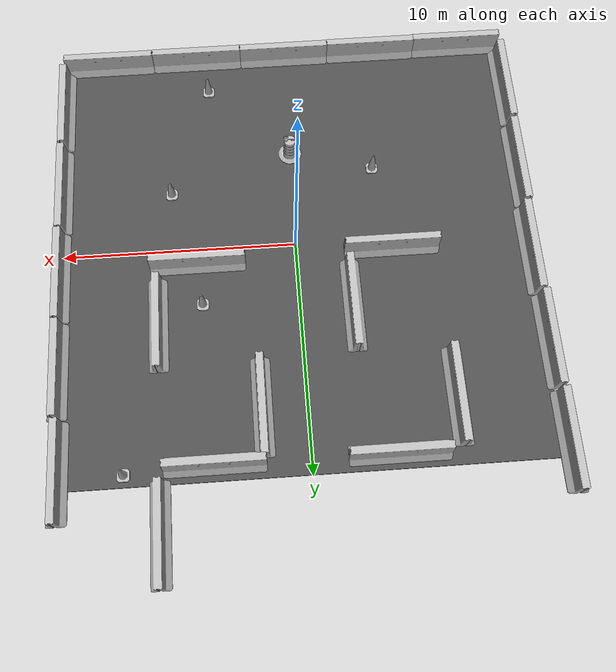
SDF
<sdf version="1.6">
 <world name="default">
  <model name="ground_plane">
   <static>1</static>
   <link name="link">
    <collision name="collision">
     <geometry><plane><normal>0 0 1</normal><size>100 100</size></plane></geometry>
     <surface><friction><ode><mu>100</mu><mu2>50</mu2></ode></friction></surface>
    </collision>
    <visual name="visual">
     <cast_shadows>0</cast_shadows>
     <geometry><plane><normal>0 0 1</normal><size>100 100</size></plane></geometry>
     <material>
      <script><uri>file://media/materials/scripts/gazebo.material</uri><name>Gazebo/Grey</name></script>
     </material>
    </visual>
   </link>
  </model>
  <model name="asphalt_plane">
   <static>1</static>
   <link name="link">
    <collision name="collision"><geometry><box><size>20 20 0.1</size></box></geometry></collision>
    <visual name="visual">
     <cast_shadows>0</cast_shadows>
     <geometry><box><size>20 20 0.1</size></box></geometry>
     <material>
      <script>
       <uri>model://asphalt_plane/materials/scripts</uri>
       <uri>model://asphalt_plane/materials/textures</uri>
       <name>vrc/asphalt</name>
      </script>
     </material>
    </visual>
   </link>
   <pose>0.010541 -0.044599 0 0 -0 0</pose>
  </model>
  <model name="jersey_barrier">
   <static>1</static>
   <link name="link">
    <visual name="visual">
     <geometry><mesh><uri>model://jersey_barrier/meshes/jersey_barrier.dae</uri></mesh></geometry>
    </visual>
    <collision name="upright">
     <pose>0 0 0.5715 0 -0 0</pose>
     <geometry><box><size>4.06542 0.3063 1.143</size></box></geometry>
    </collision>
    <collision name="base">
     <pose>0 0 0.032258 0 -0 0</pose>
     <geometry><box><size>4.06542 0.8107 0.064516</size></box></geometry>
    </collision>
    <collision name="base2">
     <pose>0 0 0.1 0 -0 0</pose>
     <geometry><box><size>4.06542 0.65 0.1</size></box></geometry>
    </collision>
    <collision name="base3">
     <pose>0 0 0.2 0 -0 0</pose>
     <geometry><box><size>4.06542 0.5 0.1</size></box></geometry>
    </collision>
    <collision name="left-angle">
     <pose>0 -0.224 0.2401 0.9 -0 0</pose>
     <geometry><box><size>4.06542 0.5 0.064516</size></box></geometry>
    </collision>
    <collision name="right-angle">
     <pose>0 0.224 0.2401 -0.9 0 0</pose>
     <geometry><box><size>4.06542 0.5 0.064516</size></box></geometry>
    </collision>
   </link>
   <pose>7.99065 -9.61442 0 0 -0 0</pose>
  </model>
  <model name="jersey_barrier_clone">
   <static>1</static>
   <link name="link">
    <visual name="visual">
     <geometry><mesh><uri>model://jersey_barrier/meshes/jersey_barrier.dae</uri></mesh></geometry>
    </visual>
    <collision name="upright">
     <pose>0 0 0.5715 0 -0 0</pose>
     <geometry><box><size>4.06542 0.3063 1.143</size></box></geometry>
    </collision>
    <collision name="base">
     <pose>0 0 0.032258 0 -0 0</pose>
     <geometry><box><size>4.06542 0.8107 0.064516</size></box></geometry>
    </collision>
    <collision name="base2">
     <pose>0 0 0.1 0 -0 0</pose>
     <geometry><box><size>4.06542 0.65 0.1</size></box></geometry>
    </collision>
    <collision name="base3">
     <pose>0 0 0.2 0 -0 0</pose>
     <geometry><box><size>4.06542 0.5 0.1</size></box></geometry>
    </collision>
    <collision name="left-angle">
     <pose>0 -0.224 0.2401 0.9 -0 0</pose>
     <geometry><box><size>4.06542 0.5 0.064516</size></box></geometry>
    </collision>
    <collision name="right-angle">
     <pose>0 0.224 0.2401 -0.9 0 0</pose>
     <geometry><box><size>4.06542 0.5 0.064516</size></box></geometry>
    </collision>
   </link>
   <pose>3.92686 -9.63135 0 0 -0 0</pose>
  </model>
  <model name="jersey_barrier_clone_0">
   <static>1</static>
   <link name="link">
    <visual name="visual">
     <geometry><mesh><uri>model://jersey_barrier/meshes/jersey_barrier.dae</uri></mesh></geometry>
    </visual>
    <collision name="upright">
     <pose>0 0 0.5715 0 -0 0</pose>
     <geometry><box><size>4.06542 0.3063 1.143</size></box></geometry>
    </collision>
    <collision name="base">
     <pose>0 0 0.032258 0 -0 0</pose>
     <geometry><box><size>4.06542 0.8107 0.064516</size></box></geometry>
    </collision>
    <collision name="base2">
     <pose>0 0 0.1 0 -0 0</pose>
     <geometry><box><size>4.06542 0.65 0.1</size></box></geometry>
    </collision>
    <collision name="base3">
     <pose>0 0 0.2 0 -0 0</pose>
     <geometry><box><size>4.06542 0.5 0.1</size></box></geometry>
    </collision>
    <collision name="left-angle">
     <pose>0 -0.224 0.2401 0.9 -0 0</pose>
     <geometry><box><size>4.06542 0.5 0.064516</size></box></geometry>
    </collision>
    <collision name="right-angle">
     <pose>0 0.224 0.2401 -0.9 0 0</pose>
     <geometry><box><size>4.06542 0.5 0.064516</size></box></geometry>
    </collision>
   </link>
   <pose>-0.107331 -9.63265 0 0 -0 0</pose>
  </model>
  <model name="jersey_barrier_clone_1">
   <static>1</static>
   <link name="link">
    <visual name="visual">
     <geometry><mesh><uri>model://jersey_barrier/meshes/jersey_barrier.dae</uri></mesh></geometry>
    </visual>
    <collision name="upright">
     <pose>0 0 0.5715 0 -0 0</pose>
     <geometry><box><size>4.06542 0.3063 1.143</size></box></geometry>
    </collision>
    <collision name="base">
     <pose>0 0 0.032258 0 -0 0</pose>
     <geometry><box><size>4.06542 0.8107 0.064516</size></box></geometry>
    </collision>
    <collision name="base2">
     <pose>0 0 0.1 0 -0 0</pose>
     <geometry><box><size>4.06542 0.65 0.1</size></box></geometry>
    </collision>
    <collision name="base3">
     <pose>0 0 0.2 0 -0 0</pose>
     <geometry><box><size>4.06542 0.5 0.1</size></box></geometry>
    </collision>
    <collision name="left-angle">
     <pose>0 -0.224 0.2401 0.9 -0 0</pose>
     <geometry><box><size>4.06542 0.5 0.064516</size></box></geometry>
    </collision>
    <collision name="right-angle">
     <pose>0 0.224 0.2401 -0.9 0 0</pose>
     <geometry><box><size>4.06542 0.5 0.064516</size></box></geometry>
    </collision>
   </link>
   <pose>-4.16052 -9.65157 0 0 -0 0</pose>
  </model>
  <model name="jersey_barrier_clone_2">
   <static>1</static>
   <link name="link">
    <visual name="visual">
     <geometry><mesh><uri>model://jersey_barrier/meshes/jersey_barrier.dae</uri></mesh></geometry>
    </visual>
    <collision name="upright">
     <pose>0 0 0.5715 0 -0 0</pose>
     <geometry><box><size>4.06542 0.3063 1.143</size></box></geometry>
    </collision>
    <collision name="base">
     <pose>0 0 0.032258 0 -0 0</pose>
     <geometry><box><size>4.06542 0.8107 0.064516</size></box></geometry>
    </collision>
    <collision name="base2">
     <pose>0 0 0.1 0 -0 0</pose>
     <geometry><box><size>4.06542 0.65 0.1</size></box></geometry>
    </collision>
    <collision name="base3">
     <pose>0 0 0.2 0 -0 0</pose>
     <geometry><box><size>4.06542 0.5 0.1</size></box></geometry>
    </collision>
    <collision name="left-angle">
     <pose>0 -0.224 0.2401 0.9 -0 0</pose>
     <geometry><box><size>4.06542 0.5 0.064516</size></box></geometry>
    </collision>
    <collision name="right-angle">
     <pose>0 0.224 0.2401 -0.9 0 0</pose>
     <geometry><box><size>4.06542 0.5 0.064516</size></box></geometry>
    </collision>
   </link>
   <pose>-8.15582 -9.68062 0 0 -0 0</pose>
  </model>
  <model name="jersey_barrier_0">
   <static>1</static>
   <link name="link">
    <visual name="visual">
     <geometry><mesh><uri>model://jersey_barrier/meshes/jersey_barrier.dae</uri></mesh></geometry>
    </visual>
    <collision name="upright">
     <pose>0 0 0.5715 0 -0 0</pose>
     <geometry><box><size>4.06542 0.3063 1.143</size></box></geometry>
    </collision>
    <collision name="base">
     <pose>0 0 0.032258 0 -0 0</pose>
     <geometry><box><size>4.06542 0.8107 0.064516</size></box></geometry>
    </collision>
    <collision name="base2">
     <pose>0 0 0.1 0 -0 0</pose>
     <geometry><box><size>4.06542 0.65 0.1</size></box></geometry>
    </collision>
    <collision name="base3">
     <pose>0 0 0.2 0 -0 0</pose>
     <geometry><box><size>4.06542 0.5 0.1</size></box></geometry>
    </collision>
    <collision name="left-angle">
     <pose>0 -0.224 0.2401 0.9 -0 0</pose>
     <geometry><box><size>4.06542 0.5 0.064516</size></box></geometry>
    </collision>
    <collision name="right-angle">
     <pose>0 0.224 0.2401 -0.9 0 0</pose>
     <geometry><box><size>4.06542 0.5 0.064516</size></box></geometry>
    </collision>
   </link>
   <pose>-10.1903 -7.24742 0 0 -0 1.57</pose>
  </model>
  <model name="jersey_barrier_0_clone">
   <static>1</static>
   <link name="link">
    <visual name="visual">
     <geometry><mesh><uri>model://jersey_barrier/meshes/jersey_barrier.dae</uri></mesh></geometry>
    </visual>
    <collision name="upright">
     <pose>0 0 0.5715 0 -0 0</pose>
     <geometry><box><size>4.06542 0.3063 1.143</size></box></geometry>
    </collision>
    <collision name="base">
     <pose>0 0 0.032258 0 -0 0</pose>
     <geometry><box><size>4.06542 0.8107 0.064516</size></box></geometry>
    </collision>
    <collision name="base2">
     <pose>0 0 0.1 0 -0 0</pose>
     <geometry><box><size>4.06542 0.65 0.1</size></box></geometry>
    </collision>
    <collision name="base3">
     <pose>0 0 0.2 0 -0 0</pose>
     <geometry><box><size>4.06542 0.5 0.1</size></box></geometry>
    </collision>
    <collision name="left-angle">
     <pose>0 -0.224 0.2401 0.9 -0 0</pose>
     <geometry><box><size>4.06542 0.5 0.064516</size></box></geometry>
    </collision>
    <collision name="right-angle">
     <pose>0 0.224 0.2401 -0.9 0 0</pose>
     <geometry><box><size>4.06542 0.5 0.064516</size></box></geometry>
    </collision>
   </link>
   <pose>-10.1525 -3.07801 0 0 -0 1.57</pose>
  </model>
  <model name="jersey_barrier_0_clone_0">
   <static>1</static>
   <link name="link">
    <visual name="visual">
     <geometry><mesh><uri>model://jersey_barrier/meshes/jersey_barrier.dae</uri></mesh></geometry>
    </visual>
    <collision name="upright">
     <pose>0 0 0.5715 0 -0 0</pose>
     <geometry><box><size>4.06542 0.3063 1.143</size></box></geometry>
    </collision>
    <collision name="base">
     <pose>0 0 0.032258 0 -0 0</pose>
     <geometry><box><size>4.06542 0.8107 0.064516</size></box></geometry>
    </collision>
    <collision name="base2">
     <pose>0 0 0.1 0 -0 0</pose>
     <geometry><box><size>4.06542 0.65 0.1</size></box></geometry>
    </collision>
    <collision name="base3">
     <pose>0 0 0.2 0 -0 0</pose>
     <geometry><box><size>4.06542 0.5 0.1</size></box></geometry>
    </collision>
    <collision name="left-angle">
     <pose>0 -0.224 0.2401 0.9 -0 0</pose>
     <geometry><box><size>4.06542 0.5 0.064516</size></box></geometry>
    </collision>
    <collision name="right-angle">
     <pose>0 0.224 0.2401 -0.9 0 0</pose>
     <geometry><box><size>4.06542 0.5 0.064516</size></box></geometry>
    </collision>
   </link>
   <pose>-10.0557 1.05787 0 0 -0 1.57</pose>
  </model>
  <model name="jersey_barrier_0_clone_1">
   <static>1</static>
   <link name="link">
    <visual name="visual">
     <geometry><mesh><uri>model://jersey_barrier/meshes/jersey_barrier.dae</uri></mesh></geometry>
    </visual>
    <collision name="upright">
     <pose>0 0 0.5715 0 -0 0</pose>
     <geometry><box><size>4.06542 0.3063 1.143</size></box></geometry>
    </collision>
    <collision name="base">
     <pose>0 0 0.032258 0 -0 0</pose>
     <geometry><box><size>4.06542 0.8107 0.064516</size></box></geometry>
    </collision>
    <collision name="base2">
     <pose>0 0 0.1 0 -0 0</pose>
     <geometry><box><size>4.06542 0.65 0.1</size></box></geometry>
    </collision>
    <collision name="base3">
     <pose>0 0 0.2 0 -0 0</pose>
     <geometry><box><size>4.06542 0.5 0.1</size></box></geometry>
    </collision>
    <collision name="left-angle">
     <pose>0 -0.224 0.2401 0.9 -0 0</pose>
     <geometry><box><size>4.06542 0.5 0.064516</size></box></geometry>
    </collision>
    <collision name="right-angle">
     <pose>0 0.224 0.2401 -0.9 0 0</pose>
     <geometry><box><size>4.06542 0.5 0.064516</size></box></geometry>
    </collision>
   </link>
   <pose>-10.1433 5.17446 0 0 -0 1.57</pose>
  </model>
  <model name="jersey_barrier_0_clone_2">
   <static>1</static>
   <link name="link">
    <visual name="visual">
     <geometry><mesh><uri>model://jersey_barrier/meshes/jersey_barrier.dae</uri></mesh></geometry>
    </visual>
    <collision name="upright">
     <pose>0 0 0.5715 0 -0 0</pose>
     <geometry><box><size>4.06542 0.3063 1.143</size></box></geometry>
    </collision>
    <collision name="base">
     <pose>0 0 0.032258 0 -0 0</pose>
     <geometry><box><size>4.06542 0.8107 0.064516</size></box></geometry>
    </collision>
    <collision name="base2">
     <pose>0 0 0.1 0 -0 0</pose>
     <geometry><box><size>4.06542 0.65 0.1</size></box></geometry>
    </collision>
    <collision name="base3">
     <pose>0 0 0.2 0 -0 0</pose>
     <geometry><box><size>4.06542 0.5 0.1</size></box></geometry>
    </collision>
    <collision name="left-angle">
     <pose>0 -0.224 0.2401 0.9 -0 0</pose>
     <geometry><box><size>4.06542 0.5 0.064516</size></box></geometry>
    </collision>
    <collision name="right-angle">
     <pose>0 0.224 0.2401 -0.9 0 0</pose>
     <geometry><box><size>4.06542 0.5 0.064516</size></box></geometry>
    </collision>
   </link>
   <pose>-10.1908 9.33826 0 0 -0 1.57</pose>
  </model>
  <model name="jersey_barrier_0_clone_8">
   <static>1</static>
   <link name="link">
    <visual name="visual">
     <geometry><mesh><uri>model://jersey_barrier/meshes/jersey_barrier.dae</uri></mesh></geometry>
    </visual>
    <collision name="upright">
     <pose>0 0 0.5715 0 -0 0</pose>
     <geometry><box><size>4.06542 0.3063 1.143</size></box></geometry>
    </collision>
    <collision name="base">
     <pose>0 0 0.032258 0 -0 0</pose>
     <geometry><box><size>4.06542 0.8107 0.064516</size></box></geometry>
    </collision>
    <collision name="base2">
     <pose>0 0 0.1 0 -0 0</pose>
     <geometry><box><size>4.06542 0.65 0.1</size></box></geometry>
    </collision>
    <collision name="base3">
     <pose>0 0 0.2 0 -0 0</pose>
     <geometry><box><size>4.06542 0.5 0.1</size></box></geometry>
    </collision>
    <collision name="left-angle">
     <pose>0 -0.224 0.2401 0.9 -0 0</pose>
     <geometry><box><size>4.06542 0.5 0.064516</size></box></geometry>
    </collision>
    <collision name="right-angle">
     <pose>0 0.224 0.2401 -0.9 0 0</pose>
     <geometry><box><size>4.06542 0.5 0.064516</size></box></geometry>
    </collision>
   </link>
   <pose>10.0338 -7.23924 0 0 -0 1.57</pose>
  </model>
  <model name="jersey_barrier_0_clone_9">
   <static>1</static>
   <link name="link">
    <visual name="visual">
     <geometry><mesh><uri>model://jersey_barrier/meshes/jersey_barrier.dae</uri></mesh></geometry>
    </visual>
    <collision name="upright">
     <pose>0 0 0.5715 0 -0 0</pose>
     <geometry><box><size>4.06542 0.3063 1.143</size></box></geometry>
    </collision>
    <collision name="base">
     <pose>0 0 0.032258 0 -0 0</pose>
     <geometry><box><size>4.06542 0.8107 0.064516</size></box></geometry>
    </collision>
    <collision name="base2">
     <pose>0 0 0.1 0 -0 0</pose>
     <geometry><box><size>4.06542 0.65 0.1</size></box></geometry>
    </collision>
    <collision name="base3">
     <pose>0 0 0.2 0 -0 0</pose>
     <geometry><box><size>4.06542 0.5 0.1</size></box></geometry>
    </collision>
    <collision name="left-angle">
     <pose>0 -0.224 0.2401 0.9 -0 0</pose>
     <geometry><box><size>4.06542 0.5 0.064516</size></box></geometry>
    </collision>
    <collision name="right-angle">
     <pose>0 0.224 0.2401 -0.9 0 0</pose>
     <geometry><box><size>4.06542 0.5 0.064516</size></box></geometry>
    </collision>
   </link>
   <pose>10.0508 -3.08382 0 0 -0 1.57</pose>
  </model>
  <model name="jersey_barrier_0_clone_10">
   <static>1</static>
   <link name="link">
    <visual name="visual">
     <geometry><mesh><uri>model://jersey_barrier/meshes/jersey_barrier.dae</uri></mesh></geometry>
    </visual>
    <collision name="upright">
     <pose>0 0 0.5715 0 -0 0</pose>
     <geometry><box><size>4.06542 0.3063 1.143</size></box></geometry>
    </collision>
    <collision name="base">
     <pose>0 0 0.032258 0 -0 0</pose>
     <geometry><box><size>4.06542 0.8107 0.064516</size></box></geometry>
    </collision>
    <collision name="base2">
     <pose>0 0 0.1 0 -0 0</pose>
     <geometry><box><size>4.06542 0.65 0.1</size></box></geometry>
    </collision>
    <collision name="base3">
     <pose>0 0 0.2 0 -0 0</pose>
     <geometry><box><size>4.06542 0.5 0.1</size></box></geometry>
    </collision>
    <collision name="left-angle">
     <pose>0 -0.224 0.2401 0.9 -0 0</pose>
     <geometry><box><size>4.06542 0.5 0.064516</size></box></geometry>
    </collision>
    <collision name="right-angle">
     <pose>0 0.224 0.2401 -0.9 0 0</pose>
     <geometry><box><size>4.06542 0.5 0.064516</size></box></geometry>
    </collision>
   </link>
   <pose>10.091 1.01244 0 0 -0 1.57</pose>
  </model>
  <model name="jersey_barrier_0_clone_11">
   <static>1</static>
   <link name="link">
    <visual name="visual">
     <geometry><mesh><uri>model://jersey_barrier/meshes/jersey_barrier.dae</uri></mesh></geometry>
    </visual>
    <collision name="upright">
     <pose>0 0 0.5715 0 -0 0</pose>
     <geometry><box><size>4.06542 0.3063 1.143</size></box></geometry>
    </collision>
    <collision name="base">
     <pose>0 0 0.032258 0 -0 0</pose>
     <geometry><box><size>4.06542 0.8107 0.064516</size></box></geometry>
    </collision>
    <collision name="base2">
     <pose>0 0 0.1 0 -0 0</pose>
     <geometry><box><size>4.06542 0.65 0.1</size></box></geometry>
    </collision>
    <collision name="base3">
     <pose>0 0 0.2 0 -0 0</pose>
     <geometry><box><size>4.06542 0.5 0.1</size></box></geometry>
    </collision>
    <collision name="left-angle">
     <pose>0 -0.224 0.2401 0.9 -0 0</pose>
     <geometry><box><size>4.06542 0.5 0.064516</size></box></geometry>
    </collision>
    <collision name="right-angle">
     <pose>0 0.224 0.2401 -0.9 0 0</pose>
     <geometry><box><size>4.06542 0.5 0.064516</size></box></geometry>
    </collision>
   </link>
   <pose>10.0774 5.12431 0 0 -0 1.57</pose>
  </model>
  <model name="jersey_barrier_0_clone_12">
   <static>1</static>
   <link name="link">
    <visual name="visual">
     <geometry><mesh><uri>model://jersey_barrier/meshes/jersey_barrier.dae</uri></mesh></geometry>
    </visual>
    <collision name="upright">
     <pose>0 0 0.5715 0 -0 0</pose>
     <geometry><box><size>4.06542 0.3063 1.143</size></box></geometry>
    </collision>
    <collision name="base">
     <pose>0 0 0.032258 0 -0 0</pose>
     <geometry><box><size>4.06542 0.8107 0.064516</size></box></geometry>
    </collision>
    <collision name="base2">
     <pose>0 0 0.1 0 -0 0</pose>
     <geometry><box><size>4.06542 0.65 0.1</size></box></geometry>
    </collision>
    <collision name="base3">
     <pose>0 0 0.2 0 -0 0</pose>
     <geometry><box><size>4.06542 0.5 0.1</size></box></geometry>
    </collision>
    <collision name="left-angle">
     <pose>0 -0.224 0.2401 0.9 -0 0</pose>
     <geometry><box><size>4.06542 0.5 0.064516</size></box></geometry>
    </collision>
    <collision name="right-angle">
     <pose>0 0.224 0.2401 -0.9 0 0</pose>
     <geometry><box><size>4.06542 0.5 0.064516</size></box></geometry>
    </collision>
   </link>
   <pose>9.99 9.26218 0 0 -0 1.57</pose>
  </model>
  <model name="jersey_barrier_1_clone_3">
   <static>1</static>
   <link name="link">
    <visual name="visual">
     <geometry><mesh><uri>model://jersey_barrier/meshes/jersey_barrier.dae</uri></mesh></geometry>
    </visual>
    <collision name="upright">
     <pose>0 0 0.5715 0 -0 0</pose>
     <geometry><box><size>4.06542 0.3063 1.143</size></box></geometry>
    </collision>
    <collision name="base">
     <pose>0 0 0.032258 0 -0 0</pose>
     <geometry><box><size>4.06542 0.8107 0.064516</size></box></geometry>
    </collision>
    <collision name="base2">
     <pose>0 0 0.1 0 -0 0</pose>
     <geometry><box><size>4.06542 0.65 0.1</size></box></geometry>
    </collision>
    <collision name="base3">
     <pose>0 0 0.2 0 -0 0</pose>
     <geometry><box><size>4.06542 0.5 0.1</size></box></geometry>
    </collision>
    <collision name="left-angle">
     <pose>0 -0.224 0.2401 0.9 -0 0</pose>
     <geometry><box><size>4.06542 0.5 0.064516</size></box></geometry>
    </collision>
    <collision name="right-angle">
     <pose>0 0.224 0.2401 -0.9 0 0</pose>
     <geometry><box><size>4.06542 0.5 0.064516</size></box></geometry>
    </collision>
   </link>
   <pose>-4.09475 0.466008 0 0 -0 0</pose>
  </model>
  <model name="jersey_barrier_1_clone_4">
   <static>1</static>
   <link name="link">
    <visual name="visual">
     <geometry><mesh><uri>model://jersey_barrier/meshes/jersey_barrier.dae</uri></mesh></geometry>
    </visual>
    <collision name="upright">
     <pose>0 0 0.5715 0 -0 0</pose>
     <geometry><box><size>4.06542 0.3063 1.143</size></box></geometry>
    </collision>
    <collision name="base">
     <pose>0 0 0.032258 0 -0 0</pose>
     <geometry><box><size>4.06542 0.8107 0.064516</size></box></geometry>
    </collision>
    <collision name="base2">
     <pose>0 0 0.1 0 -0 0</pose>
     <geometry><box><size>4.06542 0.65 0.1</size></box></geometry>
    </collision>
    <collision name="base3">
     <pose>0 0 0.2 0 -0 0</pose>
     <geometry><box><size>4.06542 0.5 0.1</size></box></geometry>
    </collision>
    <collision name="left-angle">
     <pose>0 -0.224 0.2401 0.9 -0 0</pose>
     <geometry><box><size>4.06542 0.5 0.064516</size></box></geometry>
    </collision>
    <collision name="right-angle">
     <pose>0 0.224 0.2401 -0.9 0 0</pose>
     <geometry><box><size>4.06542 0.5 0.064516</size></box></geometry>
    </collision>
   </link>
   <pose>4.22511 0.708819 0 0 -0 0</pose>
  </model>
  <model name="jersey_barrier_0_clone_11_clone">
   <static>1</static>
   <link name="link">
    <visual name="visual">
     <geometry><mesh><uri>model://jersey_barrier/meshes/jersey_barrier.dae</uri></mesh></geometry>
    </visual>
    <collision name="upright">
     <pose>0 0 0.5715 0 -0 0</pose>
     <geometry><box><size>4.06542 0.3063 1.143</size></box></geometry>
    </collision>
    <collision name="base">
     <pose>0 0 0.032258 0 -0 0</pose>
     <geometry><box><size>4.06542 0.8107 0.064516</size></box></geometry>
    </collision>
    <collision name="base2">
     <pose>0 0 0.1 0 -0 0</pose>
     <geometry><box><size>4.06542 0.65 0.1</size></box></geometry>
    </collision>
    <collision name="base3">
     <pose>0 0 0.2 0 -0 0</pose>
     <geometry><box><size>4.06542 0.5 0.1</size></box></geometry>
    </collision>
    <collision name="left-angle">
     <pose>0 -0.224 0.2401 0.9 -0 0</pose>
     <geometry><box><size>4.06542 0.5 0.064516</size></box></geometry>
    </collision>
    <collision name="right-angle">
     <pose>0 0.224 0.2401 -0.9 0 0</pose>
     <geometry><box><size>4.06542 0.5 0.064516</size></box></geometry>
    </collision>
   </link>
   <pose>5.96451 3.38886 0 0 -0 1.57</pose>
  </model>
  <model name="jersey_barrier_0_clone_11_clone_1">
   <static>1</static>
   <link name="link">
    <visual name="visual">
     <geometry><mesh><uri>model://jersey_barrier/meshes/jersey_barrier.dae</uri></mesh></geometry>
    </visual>
    <collision name="upright">
     <pose>0 0 0.5715 0 -0 0</pose>
     <geometry><box><size>4.06542 0.3063 1.143</size></box></geometry>
    </collision>
    <collision name="base">
     <pose>0 0 0.032258 0 -0 0</pose>
     <geometry><box><size>4.06542 0.8107 0.064516</size></box></geometry>
    </collision>
    <collision name="base2">
     <pose>0 0 0.1 0 -0 0</pose>
     <geometry><box><size>4.06542 0.65 0.1</size></box></geometry>
    </collision>
    <collision name="base3">
     <pose>0 0 0.2 0 -0 0</pose>
     <geometry><box><size>4.06542 0.5 0.1</size></box></geometry>
    </collision>
    <collision name="left-angle">
     <pose>0 -0.224 0.2401 0.9 -0 0</pose>
     <geometry><box><size>4.06542 0.5 0.064516</size></box></geometry>
    </collision>
    <collision name="right-angle">
     <pose>0 0.224 0.2401 -0.9 0 0</pose>
     <geometry><box><size>4.06542 0.5 0.064516</size></box></geometry>
    </collision>
   </link>
   <pose>5.98804 11.8358 0 0 -0 1.57</pose>
  </model>
  <model name="jersey_barrier_0_clone_11_clone_clone_0">
   <static>1</static>
   <link name="link">
    <visual name="visual">
     <geometry><mesh><uri>model://jersey_barrier/meshes/jersey_barrier.dae</uri></mesh></geometry>
    </visual>
    <collision name="upright">
     <pose>0 0 0.5715 0 -0 0</pose>
     <geometry><box><size>4.06542 0.3063 1.143</size></box></geometry>
    </collision>
    <collision name="base">
     <pose>0 0 0.032258 0 -0 0</pose>
     <geometry><box><size>4.06542 0.8107 0.064516</size></box></geometry>
    </collision>
    <collision name="base2">
     <pose>0 0 0.1 0 -0 0</pose>
     <geometry><box><size>4.06542 0.65 0.1</size></box></geometry>
    </collision>
    <collision name="base3">
     <pose>0 0 0.2 0 -0 0</pose>
     <geometry><box><size>4.06542 0.5 0.1</size></box></geometry>
    </collision>
    <collision name="left-angle">
     <pose>0 -0.224 0.2401 0.9 -0 0</pose>
     <geometry><box><size>4.06542 0.5 0.064516</size></box></geometry>
    </collision>
    <collision name="right-angle">
     <pose>0 0.224 0.2401 -0.9 0 0</pose>
     <geometry><box><size>4.06542 0.5 0.064516</size></box></geometry>
    </collision>
   </link>
   <pose>-6.0416 7.21392 0 0 -0 1.57</pose>
  </model>
  <model name="jersey_barrier_1_clone_3_clone_0">
   <static>1</static>
   <link name="link">
    <visual name="visual">
     <geometry><mesh><uri>model://jersey_barrier/meshes/jersey_barrier.dae</uri></mesh></geometry>
    </visual>
    <collision name="upright">
     <pose>0 0 0.5715 0 -0 0</pose>
     <geometry><box><size>4.06542 0.3063 1.143</size></box></geometry>
    </collision>
    <collision name="base">
     <pose>0 0 0.032258 0 -0 0</pose>
     <geometry><box><size>4.06542 0.8107 0.064516</size></box></geometry>
    </collision>
    <collision name="base2">
     <pose>0 0 0.1 0 -0 0</pose>
     <geometry><box><size>4.06542 0.65 0.1</size></box></geometry>
    </collision>
    <collision name="base3">
     <pose>0 0 0.2 0 -0 0</pose>
     <geometry><box><size>4.06542 0.5 0.1</size></box></geometry>
    </collision>
    <collision name="left-angle">
     <pose>0 -0.224 0.2401 0.9 -0 0</pose>
     <geometry><box><size>4.06542 0.5 0.064516</size></box></geometry>
    </collision>
    <collision name="right-angle">
     <pose>0 0.224 0.2401 -0.9 0 0</pose>
     <geometry><box><size>4.06542 0.5 0.064516</size></box></geometry>
    </collision>
   </link>
   <pose>-3.46403 9.33332 0 0 -0 0</pose>
  </model>
  <model name="jersey_barrier_1_clone_3_clone_0_clone">
   <static>1</static>
   <link name="link">
    <visual name="visual">
     <geometry><mesh><uri>model://jersey_barrier/meshes/jersey_barrier.dae</uri></mesh></geometry>
    </visual>
    <collision name="upright">
     <pose>0 0 0.5715 0 -0 0</pose>
     <geometry><box><size>4.06542 0.3063 1.143</size></box></geometry>
    </collision>
    <collision name="base">
     <pose>0 0 0.032258 0 -0 0</pose>
     <geometry><box><size>4.06542 0.8107 0.064516</size></box></geometry>
    </collision>
    <collision name="base2">
     <pose>0 0 0.1 0 -0 0</pose>
     <geometry><box><size>4.06542 0.65 0.1</size></box></geometry>
    </collision>
    <collision name="base3">
     <pose>0 0 0.2 0 -0 0</pose>
     <geometry><box><size>4.06542 0.5 0.1</size></box></geometry>
    </collision>
    <collision name="left-angle">
     <pose>0 -0.224 0.2401 0.9 -0 0</pose>
     <geometry><box><size>4.06542 0.5 0.064516</size></box></geometry>
    </collision>
    <collision name="right-angle">
     <pose>0 0.224 0.2401 -0.9 0 0</pose>
     <geometry><box><size>4.06542 0.5 0.064516</size></box></geometry>
    </collision>
   </link>
   <pose>3.81167 9.31053 0.079987 0 -0 0</pose>
  </model>
  <model name="jersey_barrier_0_clone_11_clone_clone_clone">
   <static>1</static>
   <link name="link">
    <visual name="visual">
     <geometry><mesh><uri>model://jersey_barrier/meshes/jersey_barrier.dae</uri></mesh></geometry>
    </visual>
    <collision name="upright">
     <pose>0 0 0.5715 0 -0 0</pose>
     <geometry><box><size>4.06542 0.3063 1.143</size></box></geometry>
    </collision>
    <collision name="base">
     <pose>0 0 0.032258 0 -0 0</pose>
     <geometry><box><size>4.06542 0.8107 0.064516</size></box></geometry>
    </collision>
    <collision name="base2">
     <pose>0 0 0.1 0 -0 0</pose>
     <geometry><box><size>4.06542 0.65 0.1</size></box></geometry>
    </collision>
    <collision name="base3">
     <pose>0 0 0.2 0 -0 0</pose>
     <geometry><box><size>4.06542 0.5 0.1</size></box></geometry>
    </collision>
    <collision name="left-angle">
     <pose>0 -0.224 0.2401 0.9 -0 0</pose>
     <geometry><box><size>4.06542 0.5 0.064516</size></box></geometry>
    </collision>
    <collision name="right-angle">
     <pose>0 0.224 0.2401 -0.9 0 0</pose>
     <geometry><box><size>4.06542 0.5 0.064516</size></box></geometry>
    </collision>
   </link>
   <pose>-2.22226 3.03188 0 0 -0 1.57</pose>
  </model>
  <model name="jersey_barrier_0_clone_11_clone_clone_clone_clone">
   <static>1</static>
   <link name="link">
    <visual name="visual">
     <geometry><mesh><uri>model://jersey_barrier/meshes/jersey_barrier.dae</uri></mesh></geometry>
    </visual>
    <collision name="upright">
     <pose>0 0 0.5715 0 -0 0</pose>
     <geometry><box><size>4.06542 0.3063 1.143</size></box></geometry>
    </collision>
    <collision name="base">
     <pose>0 0 0.032258 0 -0 0</pose>
     <geometry><box><size>4.06542 0.8107 0.064516</size></box></geometry>
    </collision>
    <collision name="base2">
     <pose>0 0 0.1 0 -0 0</pose>
     <geometry><box><size>4.06542 0.65 0.1</size></box></geometry>
    </collision>
    <collision name="base3">
     <pose>0 0 0.2 0 -0 0</pose>
     <geometry><box><size>4.06542 0.5 0.1</size></box></geometry>
    </collision>
    <collision name="left-angle">
     <pose>0 -0.224 0.2401 0.9 -0 0</pose>
     <geometry><box><size>4.06542 0.5 0.064516</size></box></geometry>
    </collision>
    <collision name="right-angle">
     <pose>0 0.224 0.2401 -0.9 0 0</pose>
     <geometry><box><size>4.06542 0.5 0.064516</size></box></geometry>
    </collision>
   </link>
   <pose>1.83832 7.13974 0 0 -0 1.57</pose>
  </model>
  <model name="Construction Cone">
   <link name="link">
    <collision name="collision">
     <geometry>
      <mesh><scale>10 10 10</scale><uri>model://construction_cone/meshes/construction_cone.dae</uri></mesh>
     </geometry>
    </collision>
    <visual name="visual">
     <geometry>
      <mesh><scale>10 10 10</scale><uri>model://construction_cone/meshes/construction_cone.dae</uri></mesh>
     </geometry>
    </visual>
    <inertial>
     <inertia><ixx>1</ixx><ixy>0</ixy><ixz>0</ixz><iyy>1</iyy><iyz>0</iyz><izz>1</izz></inertia>
     <mass>1</mass>
    </inertial>
   </link>
   <pose>-3.66705 -3.46261 0.04999 1e-06 1e-06 0</pose>
  </model>
  <model name="Construction Barrel">
   <link name="link">
    <inertial>
     <pose>0 0 0.4 0 -0 0</pose>
     <mass>500</mass>
     <inertia><ixx>51.2096</ixx><iyy>51.2096</iyy><izz>25</izz><ixy>0</ixy><ixz>0</ixz><iyz>0</iyz></inertia>
    </inertial>
    <collision name="collision">
     <geometry><mesh><uri>model://construction_barrel/meshes/construction_barrel.dae</uri></mesh></geometry>
    </collision>
    <visual name="visual">
     <geometry><mesh><uri>model://construction_barrel/meshes/construction_barrel.dae</uri></mesh></geometry>
    </visual>
   </link>
   <pose>-0.064476 -4.46273 0.049999 3e-06 0 3.6e-05</pose>
  </model>
  <model name="Construction Cone_clone">
   <link name="link">
    <collision name="collision">
     <geometry>
      <mesh><scale>10 10 10</scale><uri>model://construction_cone/meshes/construction_cone.dae</uri></mesh>
     </geometry>
    </collision>
    <visual name="visual">
     <geometry>
      <mesh><scale>10 10 10</scale><uri>model://construction_cone/meshes/construction_cone.dae</uri></mesh>
     </geometry>
    </visual>
    <inertial>
     <inertia><ixx>1</ixx><ixy>0</ixy><ixz>0</ixz><iyy>1</iyy><iyz>0</iyz><izz>1</izz></inertia>
     <mass>1</mass>
    </inertial>
   </link>
   <pose>3.46723 -7.97088 0.050002 5e-06 -2e-06 -0</pose>
  </model>
  <model name="Construction Cone_clone_0">
   <link name="link">
    <collision name="collision">
     <geometry>
      <mesh><scale>10 10 10</scale><uri>model://construction_cone/meshes/construction_cone.dae</uri></mesh>
     </geometry>
    </collision>
    <visual name="visual">
     <geometry>
      <mesh><scale>10 10 10</scale><uri>model://construction_cone/meshes/construction_cone.dae</uri></mesh>
     </geometry>
    </visual>
    <inertial>
     <inertia><ixx>1</ixx><ixy>0</ixy><ixz>0</ixz><iyy>1</iyy><iyz>0</iyz><izz>1</izz></inertia>
     <mass>1</mass>
    </inertial>
   </link>
   <pose>4.08135 2.56413 0.05 0 -0 0</pose>
  </model>
  <model name="Construction Cone_clone_1">
   <link name="link">
    <collision name="collision">
     <geometry>
      <mesh><scale>10 10 10</scale><uri>model://construction_cone/meshes/construction_cone.dae</uri></mesh>
     </geometry>
    </collision>
    <visual name="visual">
     <geometry>
      <mesh><scale>10 10 10</scale><uri>model://construction_cone/meshes/construction_cone.dae</uri></mesh>
     </geometry>
    </visual>
    <inertial>
     <inertia><ixx>1</ixx><ixy>0</ixy><ixz>0</ixz><iyy>1</iyy><iyz>0</iyz><izz>1</izz></inertia>
     <mass>1</mass>
    </inertial>
   </link>
   <pose>5.27522 -2.71447 0.04999 1e-06 -0 0</pose>
  </model>
  <model name="Construction Cone_clone_2">
   <link name="link">
    <collision name="collision">
     <geometry>
      <mesh><scale>10 10 10</scale><uri>model://construction_cone/meshes/construction_cone.dae</uri></mesh>
     </geometry>
    </collision>
    <visual name="visual">
     <geometry>
      <mesh><scale>10 10 10</scale><uri>model://construction_cone/meshes/construction_cone.dae</uri></mesh>
     </geometry>
    </visual>
    <inertial>
     <inertia><ixx>1</ixx><ixy>0</ixy><ixz>0</ixz><iyy>1</iyy><iyz>0</iyz><izz>1</izz></inertia>
     <mass>1</mass>
    </inertial>
   </link>
   <pose>7.41612 9.48214 0.05 0 -0 0</pose>
  </model>
 </world>
</sdf>
